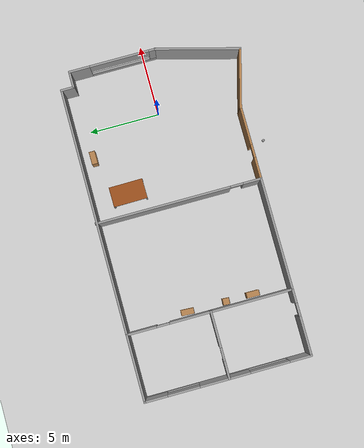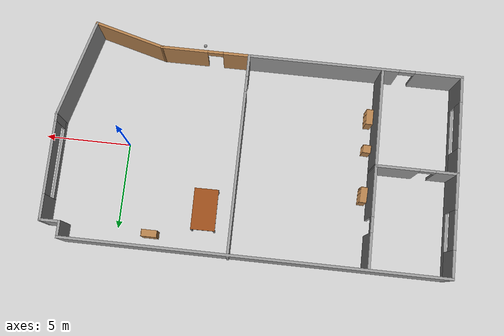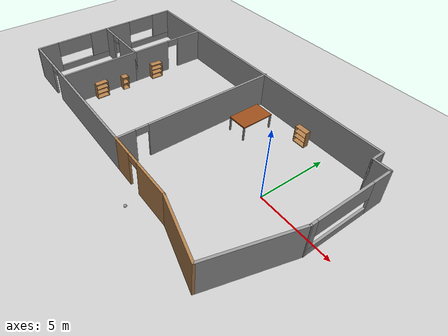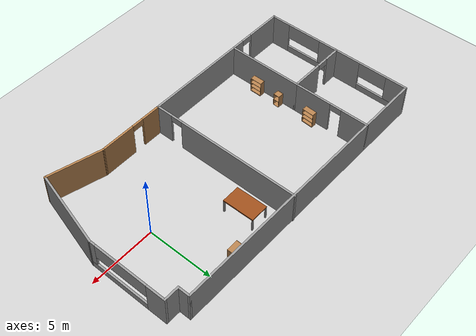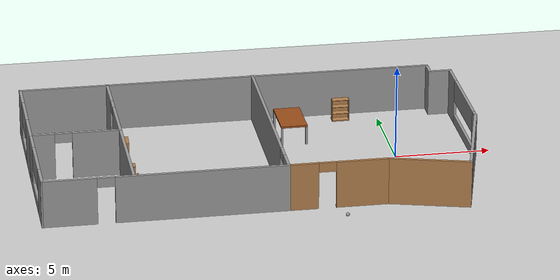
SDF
<sdf version="1.6">
 <world name="default">
  <model name="ground_plane">
   <static>1</static>
   <link name="link">
    <collision name="collision">
     <geometry><plane><normal>0 0 1</normal><size>100 100</size></plane></geometry>
     <surface><friction><ode><mu>100</mu><mu2>50</mu2></ode></friction></surface>
    </collision>
    <visual name="visual">
     <cast_shadows>0</cast_shadows>
     <geometry><plane><normal>0 0 1</normal><size>100 100</size></plane></geometry>
     <material>
      <script><uri>file://media/materials/scripts/gazebo.material</uri><name>Gazebo/Grey</name></script>
     </material>
    </visual>
   </link>
  </model>
  <model name="TableStudent_1">
   <link name="link_6">
    <pose>0 0 0.44 0 -0 0</pose>
    <inertial>
     <mass>1</mass>
     <inertia>
      <ixx>0.166667</ixx>
      <ixy>0</ixy>
      <ixz>0</ixz>
      <iyy>0.166667</iyy>
      <iyz>0</iyz>
      <izz>0.166667</izz>
     </inertia>
    </inertial>
    <visual name="visual">
     <geometry><box><size>2.4 1.4 0.1</size></box></geometry>
     <material>
      <lighting>1</lighting>
      <script><uri>file://media/materials/scripts/gazebo.material</uri><name>Gazebo/Grey</name></script>
      <shader type="pixel"><normal_map>__default__</normal_map></shader>
      <ambient>0.6 0.3 0.1 1</ambient>
      <diffuse>0.7 0.7 0.7 1</diffuse>
      <specular>0.01 0.01 0.01 1</specular>
      <emissive>0 0 0 1</emissive>
     </material>
    </visual>
    <collision name="collision">
     <geometry><box><size>2.4 1.4 0.1</size></box></geometry>
     <surface>
      <friction>
       <ode><mu>1</mu><mu2>1</mu2><fdir1>0 0 0</fdir1><slip1>0</slip1><slip2>0</slip2></ode>
       <torsional>
        <coefficient>1</coefficient>
        <patch_radius>0</patch_radius>
        <surface_radius>0</surface_radius>
        <use_patch_radius>1</use_patch_radius>
        <ode><slip>0</slip></ode>
       </torsional>
      </friction>
      <bounce><restitution_coefficient>0</restitution_coefficient><threshold>1e+06</threshold></bounce>
      <contact>
       <collide_without_contact>0</collide_without_contact>
       <collide_without_contact_bitmask>1</collide_without_contact_bitmask>
       <collide_bitmask>1</collide_bitmask>
       <ode>
        <soft_cfm>0</soft_cfm>
        <soft_erp>0.2</soft_erp>
        <kp>1e+13</kp>
        <kd>1</kd>
        <max_vel>0.01</max_vel>
        <min_depth>0</min_depth>
       </ode>
       <bullet>
        <split_impulse>1</split_impulse>
        <split_impulse_penetration_threshold>-0.01</split_impulse_penetration_threshold>
        <soft_cfm>0</soft_cfm>
        <soft_erp>0.2</soft_erp>
        <kp>1e+13</kp>
        <kd>1</kd>
       </bullet>
      </contact>
     </surface>
    </collision>
   </link>
   <link name="link_7">
    <pose>1.15 0.65 -0.11 0 -0 0</pose>
    <inertial>
     <mass>2</mass>
     <inertia>
      <ixx>0.166667</ixx>
      <ixy>0</ixy>
      <ixz>0</ixz>
      <iyy>0.166667</iyy>
      <iyz>0</iyz>
      <izz>0.166667</izz>
     </inertia>
    </inertial>
    <visual name="visual">
     <geometry><box><size>0.1 0.1 1</size></box></geometry>
     <material>
      <lighting>1</lighting>
      <script><uri>file://media/materials/scripts/gazebo.material</uri><name>Gazebo/Grey</name></script>
      <shader type="pixel"><normal_map>__default__</normal_map></shader>
      <ambient>0.3 0.3 0.3 1</ambient>
      <diffuse>0.7 0.7 0.7 1</diffuse>
      <specular>0.01 0.01 0.01 1</specular>
      <emissive>0 0 0 1</emissive>
     </material>
    </visual>
    <collision name="collision">
     <geometry><box><size>0.1 0.1 1</size></box></geometry>
     <surface>
      <friction>
       <ode><mu>1</mu><mu2>1</mu2><fdir1>0 0 0</fdir1><slip1>0</slip1><slip2>0</slip2></ode>
       <torsional>
        <coefficient>1</coefficient>
        <patch_radius>0</patch_radius>
        <surface_radius>0</surface_radius>
        <use_patch_radius>1</use_patch_radius>
        <ode><slip>0</slip></ode>
       </torsional>
      </friction>
      <bounce><restitution_coefficient>0</restitution_coefficient><threshold>1e+06</threshold></bounce>
      <contact>
       <collide_without_contact>0</collide_without_contact>
       <collide_without_contact_bitmask>1</collide_without_contact_bitmask>
       <collide_bitmask>1</collide_bitmask>
       <ode>
        <soft_cfm>0</soft_cfm>
        <soft_erp>0.2</soft_erp>
        <kp>1e+13</kp>
        <kd>1</kd>
        <max_vel>0.01</max_vel>
        <min_depth>0</min_depth>
       </ode>
       <bullet>
        <split_impulse>1</split_impulse>
        <split_impulse_penetration_threshold>-0.01</split_impulse_penetration_threshold>
        <soft_cfm>0</soft_cfm>
        <soft_erp>0.2</soft_erp>
        <kp>1e+13</kp>
        <kd>1</kd>
       </bullet>
      </contact>
     </surface>
    </collision>
   </link>
   <link name="link_7_clone">
    <pose>-1.15 -0.65 -0.11 0 -0 0</pose>
    <inertial>
     <mass>2</mass>
     <inertia>
      <ixx>0.166667</ixx>
      <ixy>0</ixy>
      <ixz>0</ixz>
      <iyy>0.166667</iyy>
      <iyz>0</iyz>
      <izz>0.166667</izz>
     </inertia>
    </inertial>
    <visual name="visual">
     <geometry><box><size>0.1 0.1 1</size></box></geometry>
     <material>
      <lighting>1</lighting>
      <script><uri>file://media/materials/scripts/gazebo.material</uri><name>Gazebo/Grey</name></script>
      <shader type="pixel"><normal_map>__default__</normal_map></shader>
      <ambient>0.3 0.3 0.3 1</ambient>
      <diffuse>0.7 0.7 0.7 1</diffuse>
      <specular>0.01 0.01 0.01 1</specular>
      <emissive>0 0 0 1</emissive>
     </material>
    </visual>
    <collision name="collision">
     <geometry><box><size>0.1 0.1 1</size></box></geometry>
     <surface>
      <friction>
       <ode><mu>1</mu><mu2>1</mu2><fdir1>0 0 0</fdir1><slip1>0</slip1><slip2>0</slip2></ode>
       <torsional>
        <coefficient>1</coefficient>
        <patch_radius>0</patch_radius>
        <surface_radius>0</surface_radius>
        <use_patch_radius>1</use_patch_radius>
        <ode><slip>0</slip></ode>
       </torsional>
      </friction>
      <bounce><restitution_coefficient>0</restitution_coefficient><threshold>1e+06</threshold></bounce>
      <contact>
       <collide_without_contact>0</collide_without_contact>
       <collide_without_contact_bitmask>1</collide_without_contact_bitmask>
       <collide_bitmask>1</collide_bitmask>
       <ode>
        <soft_cfm>0</soft_cfm>
        <soft_erp>0.2</soft_erp>
        <kp>1e+13</kp>
        <kd>1</kd>
        <max_vel>0.01</max_vel>
        <min_depth>0</min_depth>
       </ode>
       <bullet>
        <split_impulse>1</split_impulse>
        <split_impulse_penetration_threshold>-0.01</split_impulse_penetration_threshold>
        <soft_cfm>0</soft_cfm>
        <soft_erp>0.2</soft_erp>
        <kp>1e+13</kp>
        <kd>1</kd>
       </bullet>
      </contact>
     </surface>
    </collision>
   </link>
   <link name="link_7_clone_0">
    <pose>1.15 -0.65 -0.11 0 -0 0</pose>
    <inertial>
     <mass>2</mass>
     <inertia>
      <ixx>0.166667</ixx>
      <ixy>0</ixy>
      <ixz>0</ixz>
      <iyy>0.166667</iyy>
      <iyz>0</iyz>
      <izz>0.166667</izz>
     </inertia>
    </inertial>
    <visual name="visual">
     <geometry><box><size>0.1 0.1 1</size></box></geometry>
     <material>
      <lighting>1</lighting>
      <script><uri>file://media/materials/scripts/gazebo.material</uri><name>Gazebo/Grey</name></script>
      <shader type="pixel"><normal_map>__default__</normal_map></shader>
      <ambient>0.3 0.3 0.3 1</ambient>
      <diffuse>0.7 0.7 0.7 1</diffuse>
      <specular>0.01 0.01 0.01 1</specular>
      <emissive>0 0 0 1</emissive>
     </material>
    </visual>
    <collision name="collision">
     <geometry><box><size>0.1 0.1 1</size></box></geometry>
     <surface>
      <friction>
       <ode><mu>1</mu><mu2>1</mu2><fdir1>0 0 0</fdir1><slip1>0</slip1><slip2>0</slip2></ode>
       <torsional>
        <coefficient>1</coefficient>
        <patch_radius>0</patch_radius>
        <surface_radius>0</surface_radius>
        <use_patch_radius>1</use_patch_radius>
        <ode><slip>0</slip></ode>
       </torsional>
      </friction>
      <bounce><restitution_coefficient>0</restitution_coefficient><threshold>1e+06</threshold></bounce>
      <contact>
       <collide_without_contact>0</collide_without_contact>
       <collide_without_contact_bitmask>1</collide_without_contact_bitmask>
       <collide_bitmask>1</collide_bitmask>
       <ode>
        <soft_cfm>0</soft_cfm>
        <soft_erp>0.2</soft_erp>
        <kp>1e+13</kp>
        <kd>1</kd>
        <max_vel>0.01</max_vel>
        <min_depth>0</min_depth>
       </ode>
       <bullet>
        <split_impulse>1</split_impulse>
        <split_impulse_penetration_threshold>-0.01</split_impulse_penetration_threshold>
        <soft_cfm>0</soft_cfm>
        <soft_erp>0.2</soft_erp>
        <kp>1e+13</kp>
        <kd>1</kd>
       </bullet>
      </contact>
     </surface>
    </collision>
   </link>
   <link name="link_7_clone_1">
    <pose>-1.15 0.65 -0.11 0 -0 0</pose>
    <inertial>
     <mass>2</mass>
     <inertia>
      <ixx>0.166667</ixx>
      <ixy>0</ixy>
      <ixz>0</ixz>
      <iyy>0.166667</iyy>
      <iyz>0</iyz>
      <izz>0.166667</izz>
     </inertia>
    </inertial>
    <visual name="visual">
     <geometry><box><size>0.1 0.1 1</size></box></geometry>
     <material>
      <lighting>1</lighting>
      <script><uri>file://media/materials/scripts/gazebo.material</uri><name>Gazebo/Grey</name></script>
      <shader type="pixel"><normal_map>__default__</normal_map></shader>
      <ambient>0.3 0.3 0.3 1</ambient>
      <diffuse>0.7 0.7 0.7 1</diffuse>
      <specular>0.01 0.01 0.01 1</specular>
      <emissive>0 0 0 1</emissive>
     </material>
    </visual>
    <collision name="collision">
     <geometry><box><size>0.1 0.1 1</size></box></geometry>
     <surface>
      <friction>
       <ode><mu>1</mu><mu2>1</mu2><fdir1>0 0 0</fdir1><slip1>0</slip1><slip2>0</slip2></ode>
       <torsional>
        <coefficient>1</coefficient>
        <patch_radius>0</patch_radius>
        <surface_radius>0</surface_radius>
        <use_patch_radius>1</use_patch_radius>
        <ode><slip>0</slip></ode>
       </torsional>
      </friction>
      <bounce><restitution_coefficient>0</restitution_coefficient><threshold>1e+06</threshold></bounce>
      <contact>
       <collide_without_contact>0</collide_without_contact>
       <collide_without_contact_bitmask>1</collide_without_contact_bitmask>
       <collide_bitmask>1</collide_bitmask>
       <ode>
        <soft_cfm>0</soft_cfm>
        <soft_erp>0.2</soft_erp>
        <kp>1e+13</kp>
        <kd>1</kd>
        <max_vel>0.01</max_vel>
        <min_depth>0</min_depth>
       </ode>
       <bullet>
        <split_impulse>1</split_impulse>
        <split_impulse_penetration_threshold>-0.01</split_impulse_penetration_threshold>
        <soft_cfm>0</soft_cfm>
        <soft_erp>0.2</soft_erp>
        <kp>1e+13</kp>
        <kd>1</kd>
       </bullet>
      </contact>
     </surface>
    </collision>
   </link>
   <joint name="link_6_JOINT_10" type="fixed">
    <parent>link_6</parent>
    <child>link_7_clone</child>
    <physics>
     <ode><limit><cfm>0</cfm><erp>0.2</erp></limit><suspension><cfm>0</cfm><erp>0.2</erp></suspension></ode>
    </physics>
   </joint>
   <joint name="link_6_JOINT_11" type="fixed">
    <parent>link_6</parent>
    <child>link_7_clone_1</child>
    <physics>
     <ode><limit><cfm>0</cfm><erp>0.2</erp></limit><suspension><cfm>0</cfm><erp>0.2</erp></suspension></ode>
    </physics>
   </joint>
   <joint name="link_6_JOINT_12" type="fixed">
    <parent>link_6</parent>
    <child>link_7</child>
    <physics>
     <ode><limit><cfm>0</cfm><erp>0.2</erp></limit><suspension><cfm>0</cfm><erp>0.2</erp></suspension></ode>
    </physics>
   </joint>
   <joint name="link_6_JOINT_13" type="revolute">
    <parent>link_6</parent>
    <child>link_7_clone_0</child>
    <axis>
     <xyz>1 0 0</xyz>
     <use_parent_model_frame>0</use_parent_model_frame>
     <limit>
      <lower>-1.79769e+308</lower>
      <upper>1.79769e+308</upper>
      <effort>-1</effort>
      <velocity>-1</velocity>
     </limit>
     <dynamics>
      <spring_reference>0</spring_reference>
      <spring_stiffness>0</spring_stiffness>
      <damping>0</damping>
     </dynamics>
    </axis>
    <physics>
     <ode><limit><cfm>0</cfm><erp>0.2</erp></limit><suspension><cfm>0</cfm><erp>0.2</erp></suspension></ode>
    </physics>
   </joint>
   <static>0</static>
   <pose>-4.96274 3.5076 0.61 0 0 -1.56141</pose>
  </model>
  <model name="bookshelf_0">
   <static>1</static>
   <link name="link">
    <inertial><mass>1</mass></inertial>
    <collision name="back">
     <pose>0 0.005 0.6 0 -0 0</pose>
     <geometry><box><size>0.9 0.01 1.2</size></box></geometry>
    </collision>
    <visual name="visual1">
     <pose>0 0.005 0.6 0 -0 0</pose>
     <geometry><box><size>0.9 0.01 1.2</size></box></geometry>
     <material>
      <script><uri>file://media/materials/scripts/gazebo.material</uri><name>Gazebo/Wood</name></script>
     </material>
    </visual>
    <collision name="left_side">
     <pose>0.45 -0.195 0.6 0 -0 0</pose>
     <geometry><box><size>0.02 0.4 1.2</size></box></geometry>
    </collision>
    <visual name="visual2">
     <pose>0.45 -0.195 0.6 0 -0 0</pose>
     <geometry><box><size>0.02 0.4 1.2</size></box></geometry>
     <material>
      <script><uri>file://media/materials/scripts/gazebo.material</uri><name>Gazebo/Wood</name></script>
     </material>
    </visual>
    <collision name="right_side">
     <pose>-0.45 -0.195 0.6 0 -0 0</pose>
     <geometry><box><size>0.02 0.4 1.2</size></box></geometry>
    </collision>
    <visual name="visual3">
     <pose>-0.45 -0.195 0.6 0 -0 0</pose>
     <geometry><box><size>0.02 0.4 1.2</size></box></geometry>
     <material>
      <script><uri>file://media/materials/scripts/gazebo.material</uri><name>Gazebo/Wood</name></script>
     </material>
    </visual>
    <collision name="bottom">
     <pose>0 -0.195 0.03 0 -0 0</pose>
     <geometry><box><size>0.88 0.4 0.06</size></box></geometry>
    </collision>
    <visual name="visual4">
     <pose>0 -0.195 0.03 0 -0 0</pose>
     <geometry><box><size>0.88 0.4 0.06</size></box></geometry>
     <material>
      <script><uri>file://media/materials/scripts/gazebo.material</uri><name>Gazebo/Wood</name></script>
     </material>
    </visual>
    <collision name="top">
     <pose>0 -0.195 1.19 0 -0 0</pose>
     <geometry><box><size>0.88 0.4 0.02</size></box></geometry>
    </collision>
    <visual name="visual5">
     <pose>0 -0.195 1.19 0 -0 0</pose>
     <geometry><box><size>0.88 0.4 0.02</size></box></geometry>
     <material>
      <script><uri>file://media/materials/scripts/gazebo.material</uri><name>Gazebo/Wood</name></script>
     </material>
    </visual>
    <collision name="low_shelf">
     <pose>0 -0.195 0.43 0 -0 0</pose>
     <geometry><box><size>0.88 0.4 0.02</size></box></geometry>
    </collision>
    <visual name="visual6">
     <pose>0 -0.195 0.43 0 -0 0</pose>
     <geometry><box><size>0.88 0.4 0.02</size></box></geometry>
     <material>
      <script><uri>file://media/materials/scripts/gazebo.material</uri><name>Gazebo/Wood</name></script>
     </material>
    </visual>
    <collision name="high_shelf">
     <pose>0 -0.195 0.8 0 -0 0</pose>
     <geometry><box><size>0.88 0.4 0.02</size></box></geometry>
    </collision>
    <visual name="visual7">
     <pose>0 -0.195 0.8 0 -0 0</pose>
     <geometry><box><size>0.88 0.4 0.02</size></box></geometry>
     <material>
      <script><uri>file://media/materials/scripts/gazebo.material</uri><name>Gazebo/Wood</name></script>
     </material>
    </visual>
   </link>
   <pose>-1.96725 5.4005 0 0 -0 0</pose>
  </model>
  <model name="my_ball">
   <link name="link_1">
    <inertial>
     <mass>1</mass>
     <inertia><ixx>0.1</ixx><ixy>0</ixy><ixz>0</ixz><iyy>0.1</iyy><iyz>0</iyz><izz>0.1</izz></inertia>
    </inertial>
    <visual name="visual">
     <geometry><sphere><radius>0.1</radius></sphere></geometry>
     <material>
      <lighting>1</lighting>
      <script><uri>file://media/materials/scripts/gazebo.material</uri><name>Gazebo/Grey</name></script>
      <shader type="pixel"><normal_map>__default__</normal_map></shader>
      <ambient>1 1 1 1</ambient>
      <diffuse>1 1 1 1</diffuse>
      <specular>1 1 1 1</specular>
      <emissive>1 1 1 1</emissive>
     </material>
    </visual>
    <collision name="collision">
     <geometry><sphere><radius>0.1</radius></sphere></geometry>
     <surface>
      <friction>
       <ode><mu>1</mu><mu2>1</mu2><fdir1>0 0 0</fdir1><slip1>0</slip1><slip2>0</slip2></ode>
       <torsional>
        <coefficient>1</coefficient>
        <patch_radius>0</patch_radius>
        <surface_radius>0</surface_radius>
        <use_patch_radius>1</use_patch_radius>
        <ode><slip>0</slip></ode>
       </torsional>
      </friction>
      <bounce><restitution_coefficient>0</restitution_coefficient><threshold>1e+06</threshold></bounce>
      <contact>
       <collide_without_contact>0</collide_without_contact>
       <collide_without_contact_bitmask>1</collide_without_contact_bitmask>
       <collide_bitmask>1</collide_bitmask>
       <ode>
        <soft_cfm>0</soft_cfm>
        <soft_erp>0.2</soft_erp>
        <kp>1e+13</kp>
        <kd>1</kd>
        <max_vel>0.01</max_vel>
        <min_depth>0</min_depth>
       </ode>
       <bullet>
        <split_impulse>1</split_impulse>
        <split_impulse_penetration_threshold>-0.01</split_impulse_penetration_threshold>
        <soft_cfm>0</soft_cfm>
        <soft_erp>0.2</soft_erp>
        <kp>1e+13</kp>
        <kd>1</kd>
       </bullet>
      </contact>
     </surface>
    </collision>
   </link>
   <static>0</static>
   <pose>-3.78161 -6.66053 0.1 0 -0 0</pose>
  </model>
  <model name="my_building">
   <pose>-7.47794 -0.2408 0 0 -0 0</pose>
   <link name="Wall_10">
    <collision name="Wall_10_Collision">
     <geometry><box><size>4.25 0.15 2.5</size></box></geometry>
     <pose>0 0 1.25 0 -0 0</pose>
    </collision>
    <visual name="Wall_10_Visual">
     <pose>0 0 1.25 0 -0 0</pose>
     <geometry><box><size>4.25 0.15 2.5</size></box></geometry>
     <material>
      <script><uri>file://media/materials/scripts/gazebo.material</uri><name>Gazebo/Wood</name></script>
      <ambient>1 1 1 1</ambient>
     </material>
     <meta><layer>0</layer></meta>
    </visual>
    <pose>7.9725 -5.79157 0 0 -0 2.87979</pose>
   </link>
   <link name="Wall_11">
    <pose>3.44235 -5.26099 0 0 -0 3.14159</pose>
    <visual name="Wall_11_Visual_0">
     <pose>-1.24785 0 1.25 0 -0 0</pose>
     <geometry><box><size>2.7543 0.15 2.5</size></box></geometry>
     <material>
      <script><uri>file://media/materials/scripts/gazebo.material</uri><name>Gazebo/Wood</name></script>
      <ambient>1 1 1 1</ambient>
     </material>
     <meta><layer>0</layer></meta>
    </visual>
    <collision name="Wall_11_Collision_0">
     <geometry><box><size>2.7543 0.15 2.5</size></box></geometry>
     <pose>-1.24785 0 1.25 0 -0 0</pose>
    </collision>
    <visual name="Wall_11_Visual_1">
     <pose>1.82715 0 1.25 0 -0 0</pose>
     <geometry><box><size>1.5957 0.15 2.5</size></box></geometry>
     <material>
      <script><uri>file://media/materials/scripts/gazebo.material</uri><name>Gazebo/Wood</name></script>
      <ambient>1 1 1 1</ambient>
     </material>
     <meta><layer>0</layer></meta>
    </visual>
    <collision name="Wall_11_Collision_1">
     <geometry><box><size>1.5957 0.15 2.5</size></box></geometry>
     <pose>1.82715 0 1.25 0 -0 0</pose>
    </collision>
    <visual name="Wall_11_Visual_2">
     <pose>0.579298 0 2.25 0 -0 0</pose>
     <geometry><box><size>0.9 0.15 0.5</size></box></geometry>
     <material>
      <script><uri>file://media/materials/scripts/gazebo.material</uri><name>Gazebo/Wood</name></script>
      <ambient>1 1 1 1</ambient>
     </material>
     <meta><layer>0</layer></meta>
    </visual>
    <collision name="Wall_11_Collision_2">
     <geometry><box><size>0.9 0.15 0.5</size></box></geometry>
     <pose>0.579298 0 2.25 0 -0 0</pose>
    </collision>
   </link>
   <link name="Wall_12">
    <pose>0.892353 0.539007 0 0 -0 1.5708</pose>
    <visual name="Wall_12_Visual_0">
     <pose>-5.20647 0 1.25 0 -0 0</pose>
     <geometry><box><size>1.33705 0.15 2.5</size></box></geometry>
     <material>
      <script><uri>file://media/materials/scripts/gazebo.material</uri><name>Gazebo/Grey</name></script>
      <ambient>1 1 1 1</ambient>
     </material>
     <meta><layer>0</layer></meta>
    </visual>
    <collision name="Wall_12_Collision_0">
     <geometry><box><size>1.33705 0.15 2.5</size></box></geometry>
     <pose>-5.20647 0 1.25 0 -0 0</pose>
    </collision>
    <visual name="Wall_12_Visual_1">
     <pose>1.11853 0 1.25 0 -0 0</pose>
     <geometry><box><size>9.51295 0.15 2.5</size></box></geometry>
     <material>
      <script><uri>file://media/materials/scripts/gazebo.material</uri><name>Gazebo/Grey</name></script>
      <ambient>1 1 1 1</ambient>
     </material>
     <meta><layer>0</layer></meta>
    </visual>
    <collision name="Wall_12_Collision_1">
     <geometry><box><size>9.51295 0.15 2.5</size></box></geometry>
     <pose>1.11853 0 1.25 0 -0 0</pose>
    </collision>
    <visual name="Wall_12_Visual_2">
     <pose>-4.08795 0 2.25 0 -0 0</pose>
     <geometry><box><size>0.9 0.15 0.5</size></box></geometry>
     <material>
      <script><uri>file://media/materials/scripts/gazebo.material</uri><name>Gazebo/Grey</name></script>
      <ambient>1 1 1 1</ambient>
     </material>
     <meta><layer>0</layer></meta>
    </visual>
    <collision name="Wall_12_Collision_2">
     <geometry><box><size>0.9 0.15 0.5</size></box></geometry>
     <pose>-4.08795 0 2.25 0 -0 0</pose>
    </collision>
   </link>
   <link name="Wall_14">
    <pose>-5.28265 -5.26099 0 0 -0 3.14159</pose>
    <visual name="Wall_14_Visual_0">
     <pose>-1.85156 0 1.25 0 -0 0</pose>
     <geometry><box><size>8.79688 0.15 2.5</size></box></geometry>
     <material>
      <script><uri>file://media/materials/scripts/gazebo.material</uri><name>Gazebo/Grey</name></script>
      <ambient>1 1 1 1</ambient>
     </material>
     <meta><layer>0</layer></meta>
    </visual>
    <collision name="Wall_14_Collision_0">
     <geometry><box><size>8.79688 0.15 2.5</size></box></geometry>
     <pose>-1.85156 0 1.25 0 -0 0</pose>
    </collision>
    <visual name="Wall_14_Visual_1">
     <pose>4.84844 0 1.25 0 -0 0</pose>
     <geometry><box><size>2.80312 0.15 2.5</size></box></geometry>
     <material>
      <script><uri>file://media/materials/scripts/gazebo.material</uri><name>Gazebo/Grey</name></script>
      <ambient>1 1 1 1</ambient>
     </material>
     <meta><layer>0</layer></meta>
    </visual>
    <collision name="Wall_14_Collision_1">
     <geometry><box><size>2.80312 0.15 2.5</size></box></geometry>
     <pose>4.84844 0 1.25 0 -0 0</pose>
    </collision>
    <visual name="Wall_14_Visual_2">
     <pose>2.99688 0 2.25 0 -0 0</pose>
     <geometry><box><size>0.9 0.15 0.5</size></box></geometry>
     <material>
      <script><uri>file://media/materials/scripts/gazebo.material</uri><name>Gazebo/Grey</name></script>
      <ambient>1 1 1 1</ambient>
     </material>
     <meta><layer>0</layer></meta>
    </visual>
    <collision name="Wall_14_Collision_2">
     <geometry><box><size>0.9 0.15 0.5</size></box></geometry>
     <pose>2.99688 0 2.25 0 -0 0</pose>
    </collision>
   </link>
   <link name="Wall_15">
    <pose>-11.4705 -2.41624 0 0 -0 1.5753</pose>
    <visual name="Wall_15_Visual_0">
     <pose>-2.13567 0 1.25 0 -0 0</pose>
     <geometry><box><size>1.56823 0.15 2.5</size></box></geometry>
     <material>
      <script><uri>file://media/materials/scripts/gazebo.material</uri><name>Gazebo/Grey</name></script>
      <ambient>1 1 1 1</ambient>
     </material>
     <meta><layer>0</layer></meta>
    </visual>
    <collision name="Wall_15_Collision_0">
     <geometry><box><size>1.56823 0.15 2.5</size></box></geometry>
     <pose>-2.13567 0 1.25 0 -0 0</pose>
    </collision>
    <visual name="Wall_15_Visual_1">
     <pose>0.784114 0 0.25 0 -0 0</pose>
     <geometry><box><size>4.27134 0.15 0.5</size></box></geometry>
     <material>
      <script><uri>file://media/materials/scripts/gazebo.material</uri><name>Gazebo/Grey</name></script>
      <ambient>1 1 1 1</ambient>
     </material>
     <meta><layer>0</layer></meta>
    </visual>
    <collision name="Wall_15_Collision_1">
     <geometry><box><size>4.27134 0.15 0.5</size></box></geometry>
     <pose>0.784114 0 0.25 0 -0 0</pose>
    </collision>
    <visual name="Wall_15_Visual_2">
     <pose>2.14219 0 1.5 0 -0 0</pose>
     <geometry><box><size>1.55519 0.15 2</size></box></geometry>
     <material>
      <script><uri>file://media/materials/scripts/gazebo.material</uri><name>Gazebo/Grey</name></script>
      <ambient>1 1 1 1</ambient>
     </material>
     <meta><layer>0</layer></meta>
    </visual>
    <collision name="Wall_15_Collision_2">
     <geometry><box><size>1.55519 0.15 2</size></box></geometry>
     <pose>2.14219 0 1.5 0 -0 0</pose>
    </collision>
    <visual name="Wall_15_Visual_3">
     <pose>0.006522 0 1.9 0 -0 0</pose>
     <geometry><box><size>2.71615 0.15 1.2</size></box></geometry>
     <material>
      <script><uri>file://media/materials/scripts/gazebo.material</uri><name>Gazebo/Grey</name></script>
      <ambient>1 1 1 1</ambient>
     </material>
     <meta><layer>0</layer></meta>
    </visual>
    <collision name="Wall_15_Collision_3">
     <geometry><box><size>2.71615 0.15 1.2</size></box></geometry>
     <pose>0.006522 0 1.9 0 -0 0</pose>
    </collision>
   </link>
   <link name="Wall_16">
    <pose>-9.18326 0.428515 0 0 -0 0</pose>
    <visual name="Wall_16_Visual_0">
     <pose>-1.72713 0 1.25 0 -0 0</pose>
     <geometry><box><size>1.29574 0.15 2.5</size></box></geometry>
     <material>
      <script><uri>file://media/materials/scripts/gazebo.material</uri><name>Gazebo/Grey</name></script>
      <ambient>1 1 1 1</ambient>
     </material>
     <meta><layer>0</layer></meta>
    </visual>
    <collision name="Wall_16_Collision_0">
     <geometry><box><size>1.29574 0.15 2.5</size></box></geometry>
     <pose>-1.72713 0 1.25 0 -0 0</pose>
    </collision>
    <visual name="Wall_16_Visual_1">
     <pose>1.09787 0 1.25 0 -0 0</pose>
     <geometry><box><size>2.55426 0.15 2.5</size></box></geometry>
     <material>
      <script><uri>file://media/materials/scripts/gazebo.material</uri><name>Gazebo/Grey</name></script>
      <ambient>1 1 1 1</ambient>
     </material>
     <meta><layer>0</layer></meta>
    </visual>
    <collision name="Wall_16_Collision_1">
     <geometry><box><size>2.55426 0.15 2.5</size></box></geometry>
     <pose>1.09787 0 1.25 0 -0 0</pose>
    </collision>
    <visual name="Wall_16_Visual_2">
     <pose>-0.629257 0 2.25 0 -0 0</pose>
     <geometry><box><size>0.9 0.15 0.5</size></box></geometry>
     <material>
      <script><uri>file://media/materials/scripts/gazebo.material</uri><name>Gazebo/Grey</name></script>
      <ambient>1 1 1 1</ambient>
     </material>
     <meta><layer>0</layer></meta>
    </visual>
    <collision name="Wall_16_Collision_2">
     <geometry><box><size>0.9 0.15 0.5</size></box></geometry>
     <pose>-0.629257 0 2.25 0 -0 0</pose>
    </collision>
   </link>
   <link name="Wall_17">
    <pose>-6.88326 3.35351 0 0 -0 1.5708</pose>
    <visual name="Wall_17_Visual_0">
     <pose>-1.52159 0 1.25 0 -0 0</pose>
     <geometry><box><size>2.95682 0.15 2.5</size></box></geometry>
     <material>
      <script><uri>file://media/materials/scripts/gazebo.material</uri><name>Gazebo/Grey</name></script>
      <ambient>1 1 1 1</ambient>
     </material>
     <meta><layer>0</layer></meta>
    </visual>
    <collision name="Wall_17_Collision_0">
     <geometry><box><size>2.95682 0.15 2.5</size></box></geometry>
     <pose>-1.52159 0 1.25 0 -0 0</pose>
    </collision>
    <visual name="Wall_17_Visual_1">
     <pose>1.92841 0 1.25 0 -0 0</pose>
     <geometry><box><size>2.14318 0.15 2.5</size></box></geometry>
     <material>
      <script><uri>file://media/materials/scripts/gazebo.material</uri><name>Gazebo/Grey</name></script>
      <ambient>1 1 1 1</ambient>
     </material>
     <meta><layer>0</layer></meta>
    </visual>
    <collision name="Wall_17_Collision_1">
     <geometry><box><size>2.14318 0.15 2.5</size></box></geometry>
     <pose>1.92841 0 1.25 0 -0 0</pose>
    </collision>
    <visual name="Wall_17_Visual_2">
     <pose>0.406817 0 2.25 0 -0 0</pose>
     <geometry><box><size>0.9 0.15 0.5</size></box></geometry>
     <material>
      <script><uri>file://media/materials/scripts/gazebo.material</uri><name>Gazebo/Grey</name></script>
      <ambient>1 1 1 1</ambient>
     </material>
     <meta><layer>0</layer></meta>
    </visual>
    <collision name="Wall_17_Collision_2">
     <geometry><box><size>0.9 0.15 0.5</size></box></geometry>
     <pose>0.406817 0 2.25 0 -0 0</pose>
    </collision>
   </link>
   <link name="Wall_19">
    <collision name="Wall_19_Collision">
     <geometry><box><size>5.75 0.15 2.5</size></box></geometry>
     <pose>0 0 1.25 0 -0 0</pose>
    </collision>
    <visual name="Wall_19_Visual">
     <pose>0 0 1.25 0 -0 0</pose>
     <geometry><box><size>5.75 0.15 2.5</size></box></geometry>
     <material>
      <script><uri>file://media/materials/scripts/gazebo.material</uri><name>Gazebo/Grey</name></script>
      <ambient>1 1 1 1</ambient>
     </material>
     <meta><layer>0</layer></meta>
    </visual>
    <pose>-6.88326 -2.37148 0 0 0 -1.5708</pose>
   </link>
   <link name="Wall_3">
    <pose>-11.4833 3.35351 0 0 -0 1.5708</pose>
    <visual name="Wall_3_Visual_0">
     <pose>-1.94784 0 1.25 0 -0 0</pose>
     <geometry><box><size>2.10432 0.15 2.5</size></box></geometry>
     <material>
      <script><uri>file://media/materials/scripts/gazebo.material</uri><name>Gazebo/Grey</name></script>
      <ambient>1 1 1 1</ambient>
     </material>
     <meta><layer>0</layer></meta>
    </visual>
    <collision name="Wall_3_Collision_0">
     <geometry><box><size>2.10432 0.15 2.5</size></box></geometry>
     <pose>-1.94784 0 1.25 0 -0 0</pose>
    </collision>
    <visual name="Wall_3_Visual_1">
     <pose>1.05216 0 0.25 0 -0 0</pose>
     <geometry><box><size>3.89568 0.15 0.5</size></box></geometry>
     <material>
      <script><uri>file://media/materials/scripts/gazebo.material</uri><name>Gazebo/Grey</name></script>
      <ambient>1 1 1 1</ambient>
     </material>
     <meta><layer>0</layer></meta>
    </visual>
    <collision name="Wall_3_Collision_1">
     <geometry><box><size>3.89568 0.15 0.5</size></box></geometry>
     <pose>1.05216 0 0.25 0 -0 0</pose>
    </collision>
    <visual name="Wall_3_Visual_2">
     <pose>2.17037 0 1.5 0 -0 0</pose>
     <geometry><box><size>1.65927 0.15 2</size></box></geometry>
     <material>
      <script><uri>file://media/materials/scripts/gazebo.material</uri><name>Gazebo/Grey</name></script>
      <ambient>1 1 1 1</ambient>
     </material>
     <meta><layer>0</layer></meta>
    </visual>
    <collision name="Wall_3_Collision_2">
     <geometry><box><size>1.65927 0.15 2</size></box></geometry>
     <pose>2.17037 0 1.5 0 -0 0</pose>
    </collision>
    <visual name="Wall_3_Visual_3">
     <pose>0.222526 0 1.9 0 -0 0</pose>
     <geometry><box><size>2.23641 0.15 1.2</size></box></geometry>
     <material>
      <script><uri>file://media/materials/scripts/gazebo.material</uri><name>Gazebo/Grey</name></script>
      <ambient>1 1 1 1</ambient>
     </material>
     <meta><layer>0</layer></meta>
    </visual>
    <collision name="Wall_3_Collision_3">
     <geometry><box><size>2.23641 0.15 1.2</size></box></geometry>
     <pose>0.222526 0 1.9 0 -0 0</pose>
    </collision>
   </link>
   <link name="Wall_4">
    <collision name="Wall_4_Collision">
     <geometry><box><size>22 0.15 2.5</size></box></geometry>
     <pose>0 0 1.25 0 -0 0</pose>
    </collision>
    <visual name="Wall_4_Visual">
     <pose>0 0 1.25 0 -0 0</pose>
     <geometry><box><size>22 0.15 2.5</size></box></geometry>
     <material>
      <script><uri>file://media/materials/scripts/gazebo.material</uri><name>Gazebo/Grey</name></script>
      <ambient>1 1 1 1</ambient>
     </material>
     <meta><layer>0</layer></meta>
    </visual>
    <pose>-0.55826 6.27851 0 0 -0 0</pose>
   </link>
   <link name="Wall_5">
    <collision name="Wall_5_Collision">
     <geometry><box><size>1 0.15 2.5</size></box></geometry>
     <pose>0 0 1.25 0 -0 0</pose>
    </collision>
    <visual name="Wall_5_Visual">
     <pose>0 0 1.25 0 -0 0</pose>
     <geometry><box><size>1 0.15 2.5</size></box></geometry>
     <material>
      <script><uri>file://media/materials/scripts/gazebo.material</uri><name>Gazebo/Grey</name></script>
      <ambient>1 1 1 1</ambient>
     </material>
     <meta><layer>0</layer></meta>
    </visual>
    <pose>10.3667 5.85351 0 0 0 -1.5708</pose>
   </link>
   <link name="Wall_6">
    <collision name="Wall_6_Collision">
     <geometry><box><size>1.25 0.15 2.5</size></box></geometry>
     <pose>0 0 1.25 0 -0 0</pose>
    </collision>
    <visual name="Wall_6_Visual">
     <pose>0 0 1.25 0 -0 0</pose>
     <geometry><box><size>1.25 0.15 2.5</size></box></geometry>
     <material>
      <script><uri>file://media/materials/scripts/gazebo.material</uri><name>Gazebo/Grey</name></script>
      <ambient>1 1 1 1</ambient>
     </material>
     <meta><layer>0</layer></meta>
    </visual>
    <pose>10.9167 5.42851 0 0 -0 0</pose>
   </link>
   <link name="Wall_7">
    <pose>11.4667 2.37852 0 0 0 -1.5708</pose>
    <visual name="Wall_7_Visual_0">
     <pose>-2.36674 0 1.25 0 -0 0</pose>
     <geometry><box><size>1.51652 0.15 2.5</size></box></geometry>
     <material>
      <script><uri>file://media/materials/scripts/gazebo.material</uri><name>Gazebo/Grey</name></script>
      <ambient>1 1 1 1</ambient>
     </material>
     <meta><layer>0</layer></meta>
    </visual>
    <collision name="Wall_7_Collision_0">
     <geometry><box><size>1.51652 0.15 2.5</size></box></geometry>
     <pose>-2.36674 0 1.25 0 -0 0</pose>
    </collision>
    <visual name="Wall_7_Visual_1">
     <pose>0.758258 0 0.25 0 -0 0</pose>
     <geometry><box><size>4.73348 0.15 0.5</size></box></geometry>
     <material>
      <script><uri>file://media/materials/scripts/gazebo.material</uri><name>Gazebo/Grey</name></script>
      <ambient>1 1 1 1</ambient>
     </material>
     <meta><layer>0</layer></meta>
    </visual>
    <collision name="Wall_7_Collision_1">
     <geometry><box><size>4.73348 0.15 0.5</size></box></geometry>
     <pose>0.758258 0 0.25 0 -0 0</pose>
    </collision>
    <visual name="Wall_7_Visual_2">
     <pose>2.85836 0 1.5 0 -0 0</pose>
     <geometry><box><size>0.533285 0.15 2</size></box></geometry>
     <material>
      <script><uri>file://media/materials/scripts/gazebo.material</uri><name>Gazebo/Grey</name></script>
      <ambient>1 1 1 1</ambient>
     </material>
     <meta><layer>0</layer></meta>
    </visual>
    <collision name="Wall_7_Collision_2">
     <geometry><box><size>0.533285 0.15 2</size></box></geometry>
     <pose>2.85836 0 1.5 0 -0 0</pose>
    </collision>
    <visual name="Wall_7_Visual_3">
     <pose>0.491615 0 1.9 0 -0 0</pose>
     <geometry><box><size>4.2002 0.15 1.2</size></box></geometry>
     <material>
      <script><uri>file://media/materials/scripts/gazebo.material</uri><name>Gazebo/Grey</name></script>
      <ambient>1 1 1 1</ambient>
     </material>
     <meta><layer>0</layer></meta>
    </visual>
    <collision name="Wall_7_Collision_3">
     <geometry><box><size>4.2002 0.15 1.2</size></box></geometry>
     <pose>0.491615 0 1.9 0 -0 0</pose>
    </collision>
   </link>
   <link name="Wall_9">
    <collision name="Wall_9_Collision">
     <geometry><box><size>6 0.15 2.5</size></box></geometry>
     <pose>0 0 1.25 0 -0 0</pose>
    </collision>
    <visual name="Wall_9_Visual">
     <pose>0 0 1.25 0 -0 0</pose>
     <geometry><box><size>6 0.15 2.5</size></box></geometry>
     <material>
      <script><uri>file://media/materials/scripts/gazebo.material</uri><name>Gazebo/Grey</name></script>
      <ambient>1 1 1 1</ambient>
     </material>
     <meta><layer>0</layer></meta>
    </visual>
    <pose>10.7097 -3.49682 0 0 0 -1.8326</pose>
   </link>
   <static>1</static>
  </model>
  <model name="bookshelf_1">
   <static>1</static>
   <link name="link">
    <inertial><mass>1</mass></inertial>
    <collision name="back">
     <pose>0 0.005 0.6 0 -0 0</pose>
     <geometry><box><size>0.9 0.01 1.2</size></box></geometry>
    </collision>
    <visual name="visual1">
     <pose>0 0.005 0.6 0 -0 0</pose>
     <geometry><box><size>0.9 0.01 1.2</size></box></geometry>
     <material>
      <script><uri>file://media/materials/scripts/gazebo.material</uri><name>Gazebo/Wood</name></script>
     </material>
    </visual>
    <collision name="left_side">
     <pose>0.45 -0.195 0.6 0 -0 0</pose>
     <geometry><box><size>0.02 0.4 1.2</size></box></geometry>
    </collision>
    <visual name="visual2">
     <pose>0.45 -0.195 0.6 0 -0 0</pose>
     <geometry><box><size>0.02 0.4 1.2</size></box></geometry>
     <material>
      <script><uri>file://media/materials/scripts/gazebo.material</uri><name>Gazebo/Wood</name></script>
     </material>
    </visual>
    <collision name="right_side">
     <pose>-0.45 -0.195 0.6 0 -0 0</pose>
     <geometry><box><size>0.02 0.4 1.2</size></box></geometry>
    </collision>
    <visual name="visual3">
     <pose>-0.45 -0.195 0.6 0 -0 0</pose>
     <geometry><box><size>0.02 0.4 1.2</size></box></geometry>
     <material>
      <script><uri>file://media/materials/scripts/gazebo.material</uri><name>Gazebo/Wood</name></script>
     </material>
    </visual>
    <collision name="bottom">
     <pose>0 -0.195 0.03 0 -0 0</pose>
     <geometry><box><size>0.88 0.4 0.06</size></box></geometry>
    </collision>
    <visual name="visual4">
     <pose>0 -0.195 0.03 0 -0 0</pose>
     <geometry><box><size>0.88 0.4 0.06</size></box></geometry>
     <material>
      <script><uri>file://media/materials/scripts/gazebo.material</uri><name>Gazebo/Wood</name></script>
     </material>
    </visual>
    <collision name="top">
     <pose>0 -0.195 1.19 0 -0 0</pose>
     <geometry><box><size>0.88 0.4 0.02</size></box></geometry>
    </collision>
    <visual name="visual5">
     <pose>0 -0.195 1.19 0 -0 0</pose>
     <geometry><box><size>0.88 0.4 0.02</size></box></geometry>
     <material>
      <script><uri>file://media/materials/scripts/gazebo.material</uri><name>Gazebo/Wood</name></script>
     </material>
    </visual>
    <collision name="low_shelf">
     <pose>0 -0.195 0.43 0 -0 0</pose>
     <geometry><box><size>0.88 0.4 0.02</size></box></geometry>
    </collision>
    <visual name="visual6">
     <pose>0 -0.195 0.43 0 -0 0</pose>
     <geometry><box><size>0.88 0.4 0.02</size></box></geometry>
     <material>
      <script><uri>file://media/materials/scripts/gazebo.material</uri><name>Gazebo/Wood</name></script>
     </material>
    </visual>
    <collision name="high_shelf">
     <pose>0 -0.195 0.8 0 -0 0</pose>
     <geometry><box><size>0.88 0.4 0.02</size></box></geometry>
    </collision>
    <visual name="visual7">
     <pose>0 -0.195 0.8 0 -0 0</pose>
     <geometry><box><size>0.88 0.4 0.02</size></box></geometry>
     <material>
      <script><uri>file://media/materials/scripts/gazebo.material</uri><name>Gazebo/Wood</name></script>
     </material>
    </visual>
   </link>
   <pose>-14.1859 -2.93845 0 0 -0 1.56111</pose>
  </model>
  <model name="bookshelf_2">
   <static>1</static>
   <link name="link">
    <inertial><mass>1</mass></inertial>
    <collision name="back">
     <pose>0 0.005 0.6 0 -0 0</pose>
     <geometry><box><size>0.9 0.01 1.2</size></box></geometry>
    </collision>
    <visual name="visual1">
     <pose>0 0.005 0.6 0 -0 0</pose>
     <geometry><box><size>0.9 0.01 1.2</size></box></geometry>
     <material>
      <script><uri>file://media/materials/scripts/gazebo.material</uri><name>Gazebo/Wood</name></script>
     </material>
    </visual>
    <collision name="left_side">
     <pose>0.45 -0.195 0.6 0 -0 0</pose>
     <geometry><box><size>0.02 0.4 1.2</size></box></geometry>
    </collision>
    <visual name="visual2">
     <pose>0.45 -0.195 0.6 0 -0 0</pose>
     <geometry><box><size>0.02 0.4 1.2</size></box></geometry>
     <material>
      <script><uri>file://media/materials/scripts/gazebo.material</uri><name>Gazebo/Wood</name></script>
     </material>
    </visual>
    <collision name="right_side">
     <pose>-0.45 -0.195 0.6 0 -0 0</pose>
     <geometry><box><size>0.02 0.4 1.2</size></box></geometry>
    </collision>
    <visual name="visual3">
     <pose>-0.45 -0.195 0.6 0 -0 0</pose>
     <geometry><box><size>0.02 0.4 1.2</size></box></geometry>
     <material>
      <script><uri>file://media/materials/scripts/gazebo.material</uri><name>Gazebo/Wood</name></script>
     </material>
    </visual>
    <collision name="bottom">
     <pose>0 -0.195 0.03 0 -0 0</pose>
     <geometry><box><size>0.88 0.4 0.06</size></box></geometry>
    </collision>
    <visual name="visual4">
     <pose>0 -0.195 0.03 0 -0 0</pose>
     <geometry><box><size>0.88 0.4 0.06</size></box></geometry>
     <material>
      <script><uri>file://media/materials/scripts/gazebo.material</uri><name>Gazebo/Wood</name></script>
     </material>
    </visual>
    <collision name="top">
     <pose>0 -0.195 1.19 0 -0 0</pose>
     <geometry><box><size>0.88 0.4 0.02</size></box></geometry>
    </collision>
    <visual name="visual5">
     <pose>0 -0.195 1.19 0 -0 0</pose>
     <geometry><box><size>0.88 0.4 0.02</size></box></geometry>
     <material>
      <script><uri>file://media/materials/scripts/gazebo.material</uri><name>Gazebo/Wood</name></script>
     </material>
    </visual>
    <collision name="low_shelf">
     <pose>0 -0.195 0.43 0 -0 0</pose>
     <geometry><box><size>0.88 0.4 0.02</size></box></geometry>
    </collision>
    <visual name="visual6">
     <pose>0 -0.195 0.43 0 -0 0</pose>
     <geometry><box><size>0.88 0.4 0.02</size></box></geometry>
     <material>
      <script><uri>file://media/materials/scripts/gazebo.material</uri><name>Gazebo/Wood</name></script>
     </material>
    </visual>
    <collision name="high_shelf">
     <pose>0 -0.195 0.8 0 -0 0</pose>
     <geometry><box><size>0.88 0.4 0.02</size></box></geometry>
    </collision>
    <visual name="visual7">
     <pose>0 -0.195 0.8 0 -0 0</pose>
     <geometry><box><size>0.88 0.4 0.02</size></box></geometry>
     <material>
      <script><uri>file://media/materials/scripts/gazebo.material</uri><name>Gazebo/Wood</name></script>
     </material>
    </visual>
   </link>
   <pose>-14.172 1.72142 0 0 -0 1.51874</pose>
  </model>
  <model name="cabinet_1">
   <static>1</static>
   <link name="cabinet_bottom_plate">
    <inertial>
     <pose>0 0 -1 0 -0 0</pose>
     <inertia><ixx>2.05</ixx><ixy>0</ixy><ixz>0</ixz><iyy>2.05</iyy><iyz>0</iyz><izz>2.05</izz></inertia>
     <mass>25</mass>
    </inertial>
    <collision name="cabinet_bottom_plate_geom">
     <pose>0 0 0.01 0 -0 0</pose>
     <geometry><box><size>0.45 0.45 0.02</size></box></geometry>
    </collision>
    <visual name="cabinet_bottom_plate_geom_visual">
     <pose>0 0 0.01 0 -0 0</pose>
     <geometry><box><size>0.45 0.45 0.02</size></box></geometry>
     <material>
      <script><uri>file://media/materials/scripts/gazebo.material</uri><name>Gazebo/Wood</name></script>
     </material>
    </visual>
    <collision name="cabinet_bottom_plate_geom_cabinet_back_plate">
     <pose>0.235 0 0.51 0 -0 0</pose>
     <geometry><box><size>0.02 0.45 1.02</size></box></geometry>
    </collision>
    <visual name="cabinet_bottom_plate_geom_cabinet_back_plate_visual">
     <pose>0.235 0 0.51 0 -0 0</pose>
     <geometry><box><size>0.02 0.45 1.02</size></box></geometry>
     <material>
      <script><uri>file://media/materials/scripts/gazebo.material</uri><name>Gazebo/Wood</name></script>
     </material>
    </visual>
    <collision name="cabinet_bottom_plate_geom_cabinet_left_plate">
     <pose>0 0.235 0.51 0 -0 0</pose>
     <geometry><box><size>0.45 0.02 1.02</size></box></geometry>
    </collision>
    <visual name="cabinet_bottom_plate_geom_cabinet_left_plate_visual">
     <pose>0 0.235 0.51 0 -0 0</pose>
     <geometry><box><size>0.45 0.02 1.02</size></box></geometry>
     <material>
      <script><uri>file://media/materials/scripts/gazebo.material</uri><name>Gazebo/Wood</name></script>
     </material>
    </visual>
    <collision name="cabinet_bottom_plate_geom_cabinet_middle_plate">
     <pose>0 0 0.51 0 -0 0</pose>
     <geometry><box><size>0.45 0.45 0.02</size></box></geometry>
    </collision>
    <visual name="cabinet_bottom_plate_geom_cabinet_middle_plate_visual">
     <pose>0 0 0.51 0 -0 0</pose>
     <geometry><box><size>0.45 0.45 0.02</size></box></geometry>
     <material>
      <script><uri>file://media/materials/scripts/gazebo.material</uri><name>Gazebo/Wood</name></script>
     </material>
    </visual>
    <collision name="cabinet_bottom_plate_geom_cabinet_right_plate">
     <pose>0 -0.235 0.51 0 -0 0</pose>
     <geometry><box><size>0.45 0.02 1.02</size></box></geometry>
    </collision>
    <visual name="cabinet_bottom_plate_geom_cabinet_right_plate_visual">
     <pose>0 -0.235 0.51 0 -0 0</pose>
     <geometry><box><size>0.45 0.02 1.02</size></box></geometry>
     <material>
      <script><uri>file://media/materials/scripts/gazebo.material</uri><name>Gazebo/Wood</name></script>
     </material>
    </visual>
    <collision name="cabinet_bottom_plate_geom_cabinet_top_plate">
     <pose>0 0 1.01 0 -0 0</pose>
     <geometry><box><size>0.45 0.45 0.02</size></box></geometry>
    </collision>
    <visual name="cabinet_bottom_plate_geom_cabinet_top_plate_visual">
     <pose>0 0 1.01 0 -0 0</pose>
     <geometry><box><size>0.45 0.45 0.02</size></box></geometry>
     <material>
      <script><uri>file://media/materials/scripts/gazebo.material</uri><name>Gazebo/Wood</name></script>
     </material>
    </visual>
   </link>
   <pose>-13.9924 -1.03841 0 0 -0 3.08457</pose>
  </model>
 </world>
</sdf>
